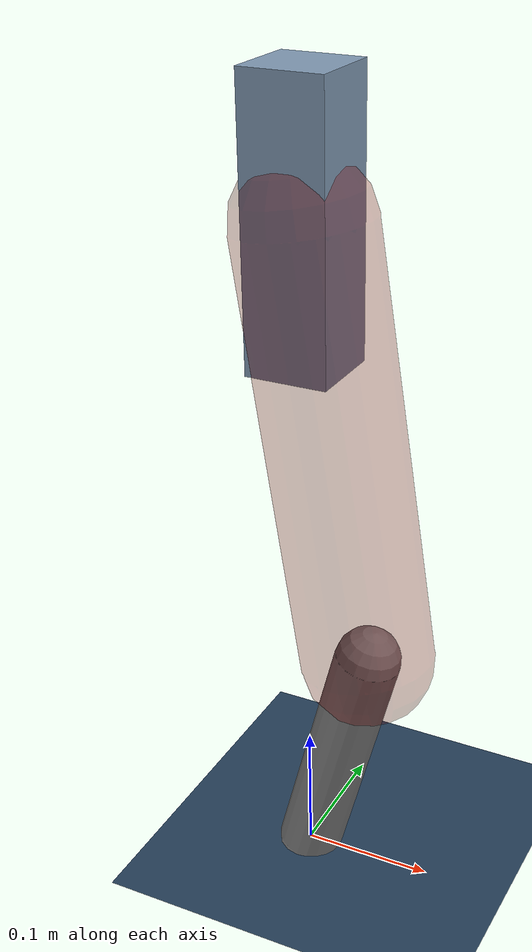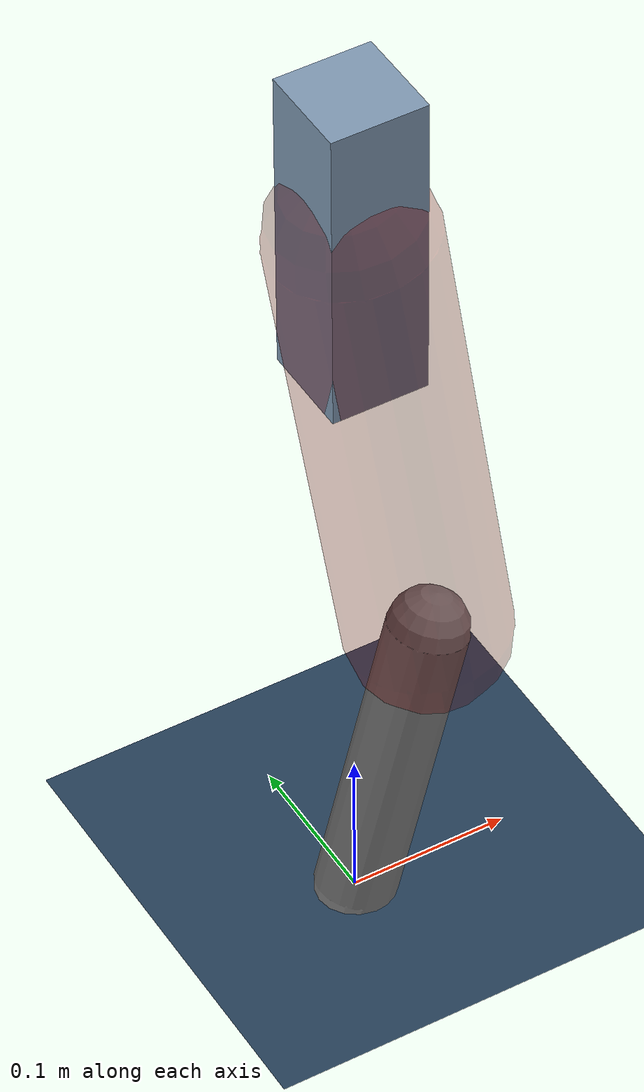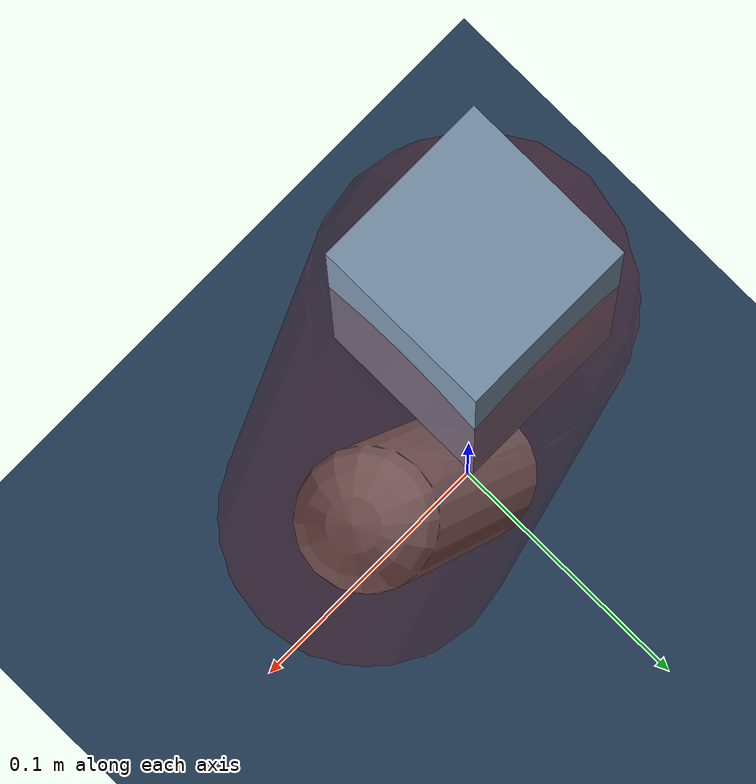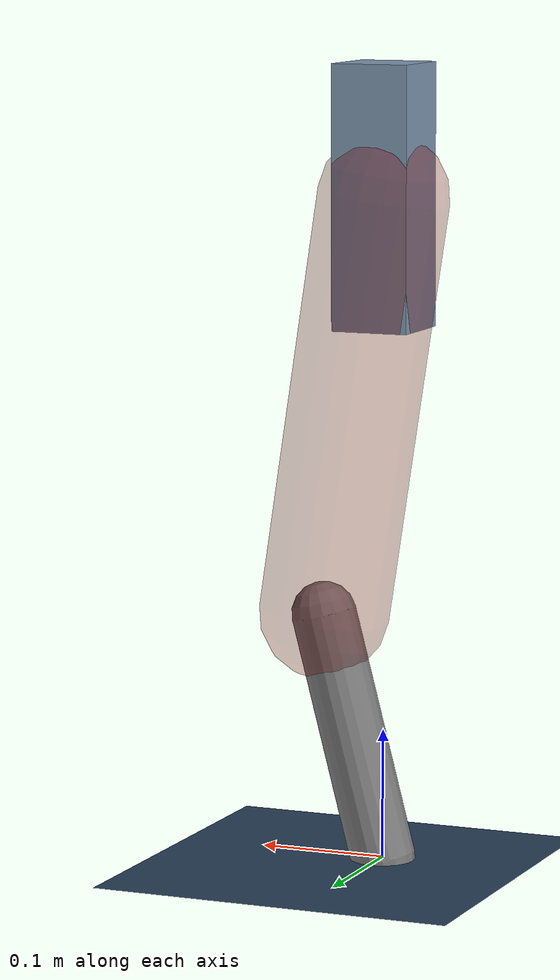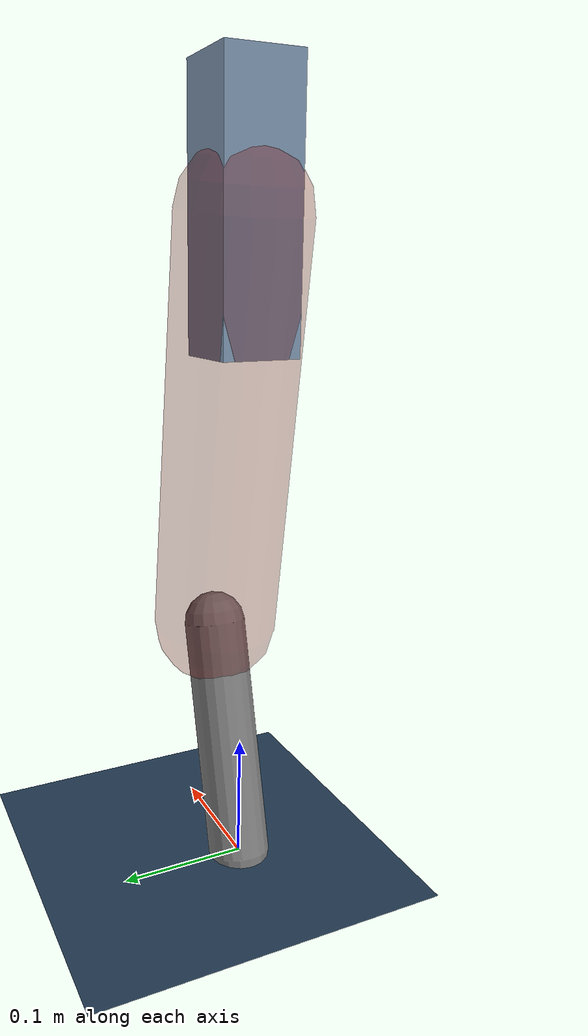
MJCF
<mujoco model="Hopper2D">
	<compiler inertiafromgeom="true" angle="radian" />
	<option timestep="0.001" integrator="implicit" cone="elliptic" solver="Newton" tolerance="1e-10" />

	<default>
		<geom contype="1" conaffinity="1" condim="3" friction="2 0.005 0.0001" solref="0.005 1" />
		<joint limited="true" damping="0.1" />
	</default>

	<asset>
		<texture name="skybox" type="skybox" builtin="gradient" rgb1=".4 .6 .8" rgb2="0 0 0" width="800" height="800" />
		<texture name="grid" type="2d" builtin="checker" rgb1=".1 .2 .3" rgb2=".2 .3 .4" width="300" height="300" mark="edge" markrgb=".2 .3 .4" />
		<material name="ground" texture="grid" texrepeat="1 1" texuniform="true" reflectance="0.1" />
		<material name="leg" rgba="0.5 0.6 0.7 1" />
	</asset>

	<worldbody>

		<geom name="floor" type="plane" size="5 5 0.25" material="ground" />

		<light directional="false" diffuse="0.8 0.8 0.8" specular="0.3 0.3 0.3" pos="0 0 2" dir="0 0 -1" />
		<light mode="targetbodycom" target="base" directional="false" diffuse="0.8 0.8 0.8" specular="0.3 0.3 0.3" pos="0 0 2" dir="0 0 -1" />

		<camera name="fixed" pos="0 -2 1" xyaxes="1 0 0 0 0 1" />
		<camera name="tracking" mode="trackcom" pos="0 -3 1" />

		<body name="root" pos="0 0 0.5087512614075463">
			<joint name="slide_x" type="slide" axis="1 0 0" range="-100 100" />
			<joint name="slide_z" type="slide" axis="0 0 1" range="0 10" />

			<body name="base" pos="0 0 0">
				<geom name="torso" type="box" size="0.03 0.03 0.1" mass="3.0949999999999998" material="leg" />

				<body name="link1" pos="0 0 0" euler="0 1.4197070245990868 0">
					<joint type="hinge" axis="0 -1 0" pos="0 0 0" name="hinge1" limited="true" range="-3.14 3.14" stiffness="0" damping="0.1" />
					<geom name="thigh" type="capsule" fromto="0 0 0 0.3252446005847452 0 0" size="0.05" rgba="0.5 0 0 0.3" mass="1.0576848816372866" />

					<body name="link2" pos="0.3252446005847452 0 0" euler="0 0.4068533942643053 0">
						<joint type="hinge" axis="0 -1 0" pos="0 0 0" name="hinge2" limited="true" range="-3.14 3.14" stiffness="0" damping="0.1" />
						<geom name="shank" type="capsule" fromto="0 0 0 0.19350666082280113 0 0" size="0.025" mass="0.3954053286582409" />

					</body>
				</body>
			</body>
		</body>
	</worldbody>

	<actuator>
		<motor name="torque1" joint="hinge1" ctrlrange="-118.34512795286206 118.34512795286206" ctrllimited="true" gear="1" />
		<motor name="torque2" joint="hinge2" ctrlrange="-78.06144650758779 78.06144650758779" ctrllimited="true" gear="1" />
	</actuator>
</mujoco>
